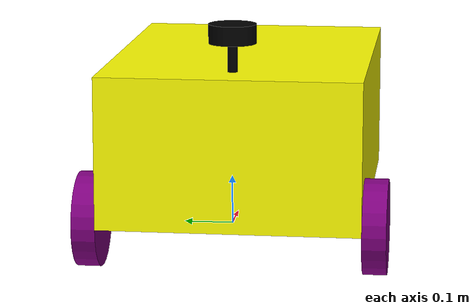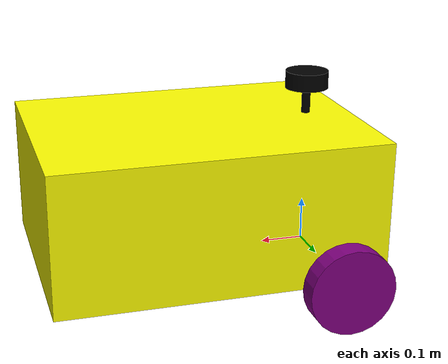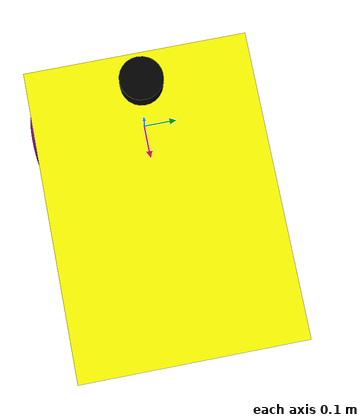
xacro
<?xml version="1.0"?>
<robot xmlns:xacro="http://www.ros.org/wiki/xacro" name="rob_one">

    <!-- Evrensel İsim Uzayı (Namespace) Ön Eki -->
    <xacro:arg name="prefix" default="" />

    <!-- 1. TEMEL MEKANİK BİLEŞENLER -->
    <xacro:include filename="robot_core.xacro" />

    <!-- 2. SENSÖRLER  -->
    <xacro:include filename="lidar.xacro" />

    <!-- 3. SİMÜLASYON KONTROL EKLENTİLERİ (GAZEBO) -->
    <xacro:include filename="gazebo_control.xacro" />

</robot>

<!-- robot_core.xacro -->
<robot xmlns:xacro="http://www.ros.org/wiki/xacro" >

    <xacro:include filename="inertial_macros.xacro"/>

    <!-- RENKLER -->
    <material name="yellow"><color rgba="1.0 1.0 0.0 1.0"/></material>
    <material name="purple"><color rgba="0.5 0.0 0.5 1.0"/></material>
    <material name="orange"><color rgba="1 0.3 0.1 1"/></material>
    <material name="black"><color rgba="0 0 0 1"/></material>
    <material name="red"><color rgba="0.8 0.1 0.1 1.0"/></material>

    <!-- AMR BOYUT DEĞİŞKENLERİ -->
    <xacro:property name="chassis_length" value="0.75"/>
    <xacro:property name="chassis_width" value="0.55"/>
    <xacro:property name="chassis_height" value="0.32"/>
    <xacro:property name="chassis_mass" value="65.0"/>

    <xacro:property name="wheel_radius" value="0.10"/>
    <xacro:property name="wheel_thickness" value="0.05"/>
    <xacro:property name="wheel_mass" value="2.5"/>
    <xacro:property name="wheel_offset_y" value="0.30"/> <!-- Şasi genişliğinin yarısı + Teker kalınlığı -->

    <xacro:property name="caster_wheel_radius" value="0.05"/>
    <xacro:property name="caster_wheel_mass" value="1.0"/>
    <xacro:property name="caster_offset_x" value="0.65"/> <!-- Şasinin ön kısmına doğru -->

    <!-- BASE LINK -->
    <link name="$(arg prefix)base_link"></link>

    <link name="$(arg prefix)base_footprint"></link>
    <joint name="$(arg prefix)base_footprint_joint" type="fixed">
       <parent link="$(arg prefix)base_link"/>
       <child link="$(arg prefix)base_footprint"/>
       <origin xyz="0 0 ${-wheel_radius}" rpy="0 0 0"/>
    </joint>

    <!-- CHASSIS LINK -->
    <joint name="$(arg prefix)chassis_joint" type="fixed">
        <parent link="$(arg prefix)base_link"/>
        <child link="$(arg prefix)chassis"/>
        <origin xyz="-0.1 0 0"/>
    </joint>

    <link name="$(arg prefix)chassis">
        <visual>
            <origin xyz="${chassis_length/2} 0 ${chassis_height/2}"/>
            <geometry>
                <box size="${chassis_length} ${chassis_width} ${chassis_height}"/>
            </geometry>
            <material name="yellow"/>
        </visual>
        <collision>
            <origin xyz="${chassis_length/2} 0 ${chassis_height/2}"/>
            <geometry>
                <box size="${chassis_length} ${chassis_width} ${chassis_height}"/>
            </geometry>
        </collision>
        <xacro:inertial_box mass="${chassis_mass}" x="${chassis_length}" y="${chassis_width}" z="${chassis_height}">
            <origin xyz="${chassis_length/2} 0 ${chassis_height/2}" rpy="0 0 0"/>
        </xacro:inertial_box>
    </link>

    <!-- LEFT WHEEL LINK -->
    <joint name="$(arg prefix)left_wheel_joint" type="continuous">
        <parent link="$(arg prefix)base_link"/>
        <child link="$(arg prefix)left_wheel"/>
        <origin xyz="0 ${wheel_offset_y} 0" rpy="-${pi/2} 0 0" />
        <axis xyz="0 0 1"/>
    </joint>

    <link name="$(arg prefix)left_wheel">
        <visual>
            <geometry>
                <cylinder radius="${wheel_radius}" length="${wheel_thickness}"/>
            </geometry>
            <material name="purple"/>
        </visual>
        <collision>
            <geometry>
                <cylinder radius="${wheel_radius}" length="${wheel_thickness}"/>
            </geometry>
        </collision>
        <xacro:inertial_cylinder mass="${wheel_mass}" length="${wheel_thickness}" radius="${wheel_radius}">
            <origin xyz="0 0 0" rpy="0 0 0"/>
        </xacro:inertial_cylinder>
    </link>

    <!-- RIGHT WHEEL LINK -->
    <joint name="$(arg prefix)right_wheel_joint" type="continuous">
        <parent link="$(arg prefix)base_link"/>
        <child link="$(arg prefix)right_wheel"/>
        <origin xyz="0 -${wheel_offset_y} 0" rpy="${pi/2} 0 0" />
        <axis xyz="0 0 -1"/>
    </joint>

    <link name="$(arg prefix)right_wheel">
        <visual>
            <geometry>
                <cylinder radius="${wheel_radius}" length="${wheel_thickness}"/>
            </geometry>
            <material name="purple"/>
        </visual>
        <collision>
            <geometry>
                <cylinder radius="${wheel_radius}" length="${wheel_thickness}"/>
            </geometry>
        </collision>
        <xacro:inertial_cylinder mass="${wheel_mass}" length="${wheel_thickness}" radius="${wheel_radius}">
            <origin xyz="0 0 0" rpy="0 0 0"/>
        </xacro:inertial_cylinder>
    </link>

    <!-- CASTER WHEEL LINK -->
    <joint name="$(arg prefix)caster_wheel_joint" type="fixed">
        <parent link="$(arg prefix)chassis"/>
        <child link="$(arg prefix)caster_wheel"/>
        <origin xyz="${caster_offset_x} 0 ${-(wheel_radius - caster_wheel_radius)}"/>
    </joint>

    <link name="$(arg prefix)caster_wheel">
        <visual>
            <geometry>
                <sphere radius="${caster_wheel_radius}"/>
            </geometry>
            <material name="orange"/>
        </visual>
        <collision>
            <geometry>
                <sphere radius="${caster_wheel_radius}"/>
            </geometry>
        </collision>
        <xacro:inertial_sphere mass="${caster_wheel_mass}" radius="${caster_wheel_radius}">
            <origin xyz="0 0 0" rpy="0 0 0"/>
        </xacro:inertial_sphere>

    </link>

    <gazebo reference="$(arg prefix)chassis">
        <material>Gazebo/Yellow</material>
    </gazebo>
    <gazebo reference="$(arg prefix)left_wheel">
        <material>Gazebo/Purple</material>
    </gazebo>
    <gazebo reference="$(arg prefix)right_wheel">
        <material>Gazebo/Purple</material>
    </gazebo>
    <gazebo reference="$(arg prefix)caster_wheel">
        <material>Gazebo/Orange</material>
        <mu1>0.001</mu1>
        <mu2>0.001</mu2>
    </gazebo>

</robot>

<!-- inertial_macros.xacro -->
<robot xmlns:xacro="http://www.ros.org/wiki/xacro" >

    <xacro:macro name="inertial_sphere" params="mass radius *origin">
        <inertial>
            <xacro:insert_block name="origin"/>
            <mass value="${mass}" />
            <inertia ixx="${(2.0/5.0) * mass * (radius*radius)}" ixy="0.0" ixz="0.0"
                     iyy="${(2.0/5.0) * mass * (radius*radius)}" iyz="0.0"
                     izz="${(2.0/5.0) * mass * (radius*radius)}" />
        </inertial>
    </xacro:macro>

    <xacro:macro name="inertial_box" params="mass x y z *origin">
        <inertial>
            <xacro:insert_block name="origin"/>
            <mass value="${mass}" />
            <inertia ixx="${(1.0/12.0) * mass * (y*y+z*z)}" ixy="0.0" ixz="0.0"
                     iyy="${(1.0/12.0) * mass * (x*x+z*z)}" iyz="0.0"
                     izz="${(1.0/12.0) * mass * (x*x+y*y)}" />
        </inertial>
    </xacro:macro>

    <xacro:macro name="inertial_cylinder" params="mass length radius *origin">
        <inertial>
            <xacro:insert_block name="origin"/>
            <mass value="${mass}" />
            <inertia ixx="${(1.0/12.0) * mass * (3*radius*radius + length*length)}" ixy="0.0" ixz="0.0"
                     iyy="${(1.0/12.0) * mass * (3*radius*radius + length*length)}" iyz="0.0"
                     izz="${(1.0/2.0) * mass * (radius*radius)}" />
        </inertial>
    </xacro:macro>

</robot>

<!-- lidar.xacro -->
<robot xmlns:xacro="http://www.ros.org/wiki/xacro" >

    <joint name="$(arg prefix)laser_joint" type="fixed">
        <parent link="$(arg prefix)base_link"/>
        <child link="$(arg prefix)laser_frame"/>
        <origin xyz="0 0 0.40" rpy="0 0 0"/>
    </joint>

    <link name="$(arg prefix)laser_frame">
        <visual>
            <geometry>
                <cylinder radius="0.05" length="0.04"/>
            </geometry>
            <material name="black"/>
        </visual>
        <visual>
            <origin xyz="0 0 -0.05"/>
            <geometry>
                <cylinder radius="0.01" length="0.1"/>
            </geometry>
            <material name="black"/>
        </visual>
        <collision>
            <geometry>
                <cylinder radius="0.05" length="0.04"/>
            </geometry>
        </collision>
        <xacro:inertial_cylinder mass="0.1" length="0.04" radius="0.05">
            <origin xyz="0 0 0" rpy="0 0 0"/>
        </xacro:inertial_cylinder>
    </link>

    <gazebo reference="$(arg prefix)laser_frame">
        <material>Gazebo/Black</material>
        <sensor name="laser" type="ray">
            <pose> 0 0 0 0 0 0 </pose>
            <visualize>false</visualize>
            <update_rate>10</update_rate>
            <ray>
                <scan>
                    <horizontal>
                        <samples>360</samples>
                        <min_angle>-3.14</min_angle>
                        <max_angle>3.14</max_angle>
                    </horizontal>
                </scan>
                <range>
                    <min>0.3</min>
                    <max>12.0</max>
                </range>
            </ray>
            <plugin name="laser_controller" filename="libgazebo_ros_ray_sensor.so">
                <ros>
                    <remapping>~/out:=scan</remapping>
                </ros>
                <output_type>sensor_msgs/LaserScan</output_type>
                <frame_name>$(arg prefix)laser_frame</frame_name>
            </plugin>
        </sensor>
    </gazebo>

</robot>
